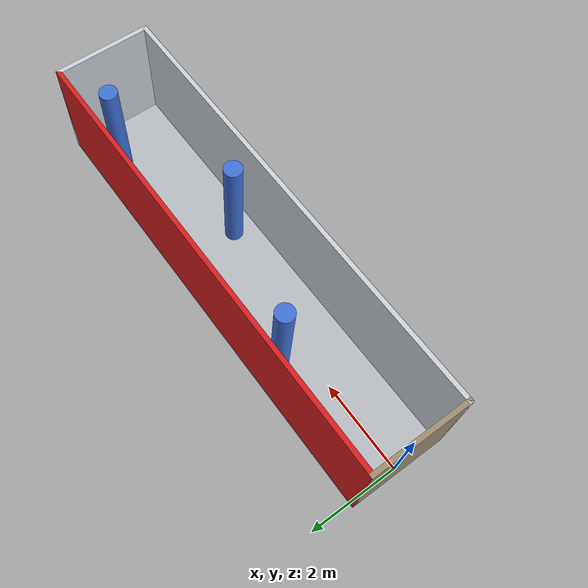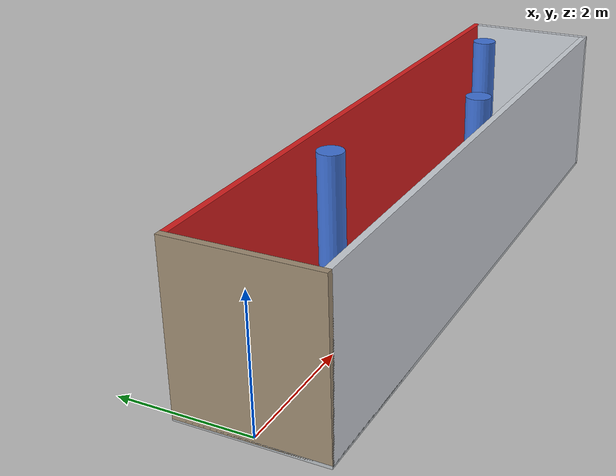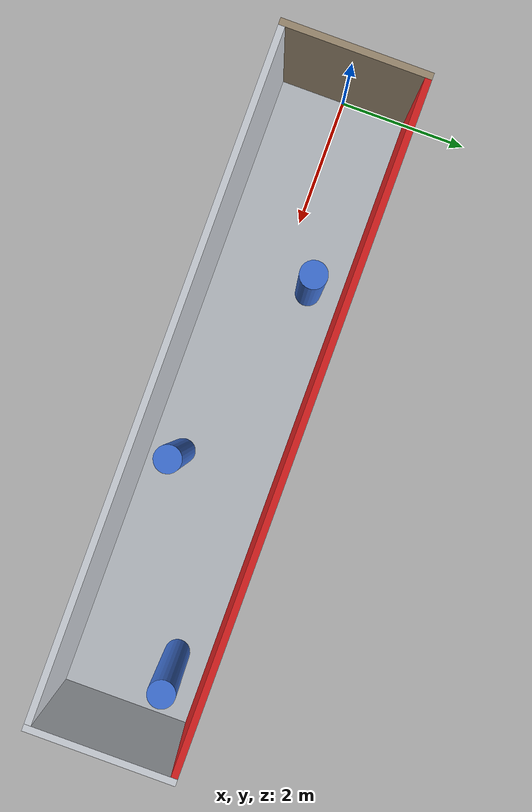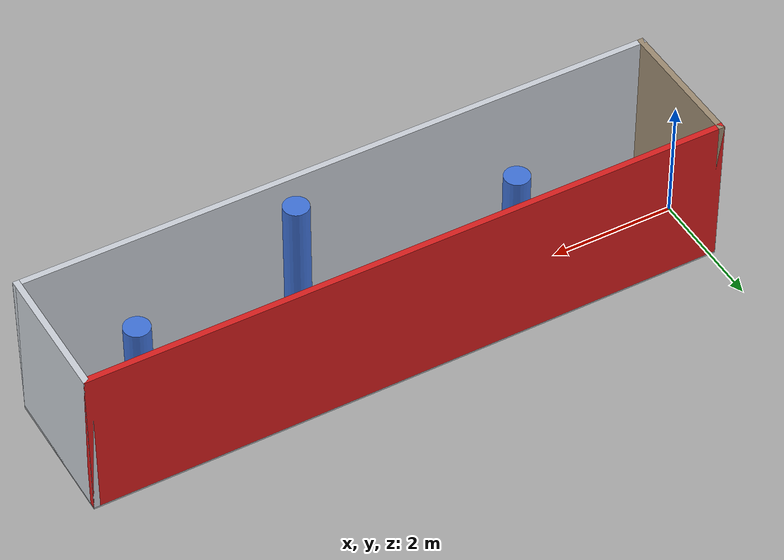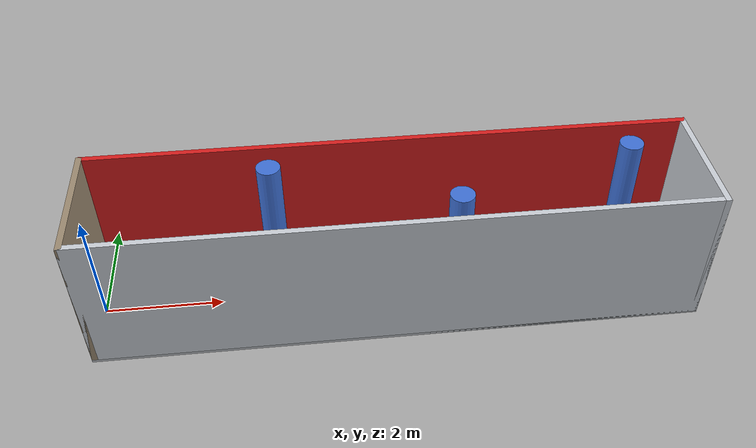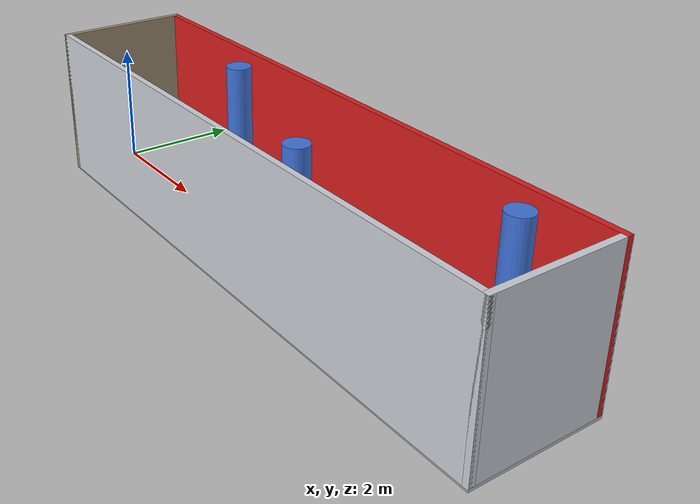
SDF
<sdf version="1.9">
 <world name="column_corridor">
  <physics name="1ms" type="ignored">
   <max_step_size>0.001</max_step_size>
   <real_time_factor>1.0</real_time_factor>
  </physics>
  <plugin filename="gz-sim-physics-system" name="gz::sim::systems::Physics"/>
  <plugin filename="gz-sim-scene-broadcaster-system" name="gz::sim::systems::SceneBroadcaster"/>
  <plugin filename="gz-sim-user-commands-system" name="gz::sim::systems::UserCommands"/>
  <plugin filename="gz-sim-sensors-system" name="gz::sim::systems::Sensors">
   <render_engine>ogre2</render_engine>
  </plugin>
  <plugin filename="gz-sim-imu-system" name="gz::sim::systems::Imu"/>
  <plugin filename="gz-sim-navsat-system" name="gz::sim::systems::NavSat"/>
  <spherical_coordinates>
   <latitude_deg>-35.363262</latitude_deg>
   <longitude_deg>149.165237</longitude_deg>
   <elevation>584.0</elevation>
   <heading_deg>0</heading_deg>
   <surface_model>EARTH_WGS84</surface_model>
  </spherical_coordinates>
  <light type="directional" name="main_light">
   <cast_shadows>false</cast_shadows>
   <pose>0 0 10 0 0 0</pose>
   <diffuse>1.0 1.0 1.0 1</diffuse>
   <specular>0.5 0.5 0.5 1</specular>
   <direction>0.1 0.1 -1</direction>
  </light>
  <model name="floor">
   <static>true</static>
   <pose>5.0 0 0.0 0 0 0</pose>
   <link name="link">
    <collision name="c"><geometry><box><size>10.2 2.2 0.05</size></box></geometry></collision>
    <visual name="v">
     <geometry><box><size>10.2 2.2 0.05</size></box></geometry>
     <material>
      <ambient>0.72 0.74 0.76 1</ambient>
      <diffuse>0.72 0.74 0.76 1</diffuse>
      <specular>0.1 0.1 0.1 1</specular>
     </material>
    </visual>
   </link>
  </model>
  <model name="border_west">
   <static>true</static>
   <pose>-0.0500 0.0000 1.250 0 0 0.00000</pose>
   <link name="link">
    <collision name="c"><geometry><box><size>0.1000 2.2000 2.500</size></box></geometry></collision>
    <visual name="v">
     <geometry><box><size>0.1000 2.2000 2.500</size></box></geometry>
     <material>
      <ambient>0.62 0.55 0.45 1</ambient>
      <diffuse>0.62 0.55 0.45 1</diffuse>
      <specular>0.1 0.1 0.1 1</specular>
     </material>
    </visual>
   </link>
  </model>
  <model name="border_east">
   <static>true</static>
   <pose>10.0500 0.0000 1.250 0 0 0.00000</pose>
   <link name="link">
    <collision name="c"><geometry><box><size>0.1000 2.2000 2.500</size></box></geometry></collision>
    <visual name="v">
     <geometry><box><size>0.1000 2.2000 2.500</size></box></geometry>
     <material>
      <ambient>0.8 0.82 0.85 1</ambient>
      <diffuse>0.8 0.82 0.85 1</diffuse>
      <specular>0.1 0.1 0.1 1</specular>
     </material>
    </visual>
   </link>
  </model>
  <model name="border_south">
   <static>true</static>
   <pose>5.0000 -1.0500 1.250 0 0 0.00000</pose>
   <link name="link">
    <collision name="c"><geometry><box><size>10.2000 0.1000 2.500</size></box></geometry></collision>
    <visual name="v">
     <geometry><box><size>10.2000 0.1000 2.500</size></box></geometry>
     <material>
      <ambient>0.8 0.82 0.85 1</ambient>
      <diffuse>0.8 0.82 0.85 1</diffuse>
      <specular>0.1 0.1 0.1 1</specular>
     </material>
    </visual>
   </link>
  </model>
  <model name="border_north">
   <static>true</static>
   <pose>5.0000 1.0500 1.250 0 0 0.00000</pose>
   <link name="link">
    <collision name="c"><geometry><box><size>10.2000 0.1000 2.500</size></box></geometry></collision>
    <visual name="v">
     <geometry><box><size>10.2000 0.1000 2.500</size></box></geometry>
     <material>
      <ambient>0.85 0.12 0.12 1</ambient>
      <diffuse>0.85 0.12 0.12 1</diffuse>
      <specular>0.1 0.1 0.1 1</specular>
     </material>
    </visual>
   </link>
  </model>
  <model name="pylon_0">
   <static>true</static>
   <pose>3.0 0.5 1.25 0 0 0</pose>
   <link name="link">
    <collision name="c">
     <geometry><cylinder><radius>0.2</radius><length>2.5</length></cylinder></geometry>
    </collision>
    <visual name="v">
     <geometry><cylinder><radius>0.2</radius><length>2.5</length></cylinder></geometry>
     <material>
      <ambient>0.25 0.45 0.85 1</ambient>
      <diffuse>0.25 0.45 0.85 1</diffuse>
      <specular>0.1 0.1 0.1 1</specular>
     </material>
    </visual>
   </link>
  </model>
  <model name="pylon_1">
   <static>true</static>
   <pose>6.0 -0.5 1.25 0 0 0</pose>
   <link name="link">
    <collision name="c">
     <geometry><cylinder><radius>0.2</radius><length>2.5</length></cylinder></geometry>
    </collision>
    <visual name="v">
     <geometry><cylinder><radius>0.2</radius><length>2.5</length></cylinder></geometry>
     <material>
      <ambient>0.25 0.45 0.85 1</ambient>
      <diffuse>0.25 0.45 0.85 1</diffuse>
      <specular>0.1 0.1 0.1 1</specular>
     </material>
    </visual>
   </link>
  </model>
  <model name="pylon_2">
   <static>true</static>
   <pose>9.0 0.5 1.25 0 0 0</pose>
   <link name="link">
    <collision name="c">
     <geometry><cylinder><radius>0.2</radius><length>2.5</length></cylinder></geometry>
    </collision>
    <visual name="v">
     <geometry><cylinder><radius>0.2</radius><length>2.5</length></cylinder></geometry>
     <material>
      <ambient>0.25 0.45 0.85 1</ambient>
      <diffuse>0.25 0.45 0.85 1</diffuse>
      <specular>0.1 0.1 0.1 1</specular>
     </material>
    </visual>
   </link>
  </model>
 </world>
</sdf>
